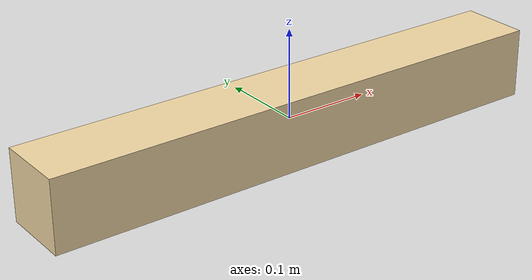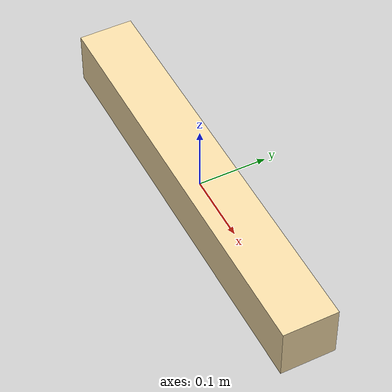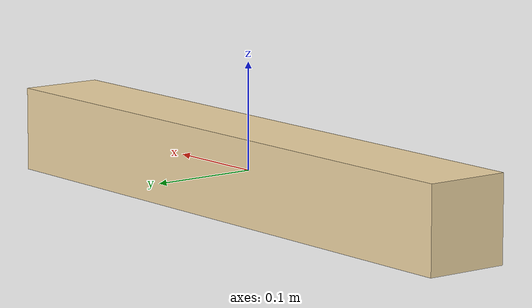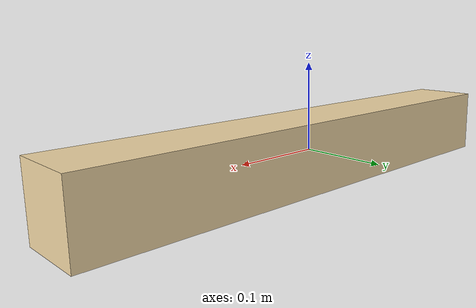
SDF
<?xml version="1.0" ?>
<sdf version="1.7">
  <model name="left_arm_block">
    <static>false</static>
    <link name="left_arm">
      <inertial><mass>3.0</mass><pose>0 0 0 0 0 0</pose>
        <inertia><ixx>0.02</ixx><ixy>0</ixy><ixz>0</ixz><iyy>0.02</iyy><iyz>0</iyz><izz>0.002</izz></inertia>
      </inertial>
      <visual name="vis"><geometry><box><size>0.60 0.08 0.08</size></box></geometry>
        <material><diffuse>0.95 0.85 0.65 1</diffuse></material></visual>
      <collision name="col"><geometry><box><size>0.60 0.08 0.08</size></box></geometry></collision>
    </link>
  </model>
</sdf>
